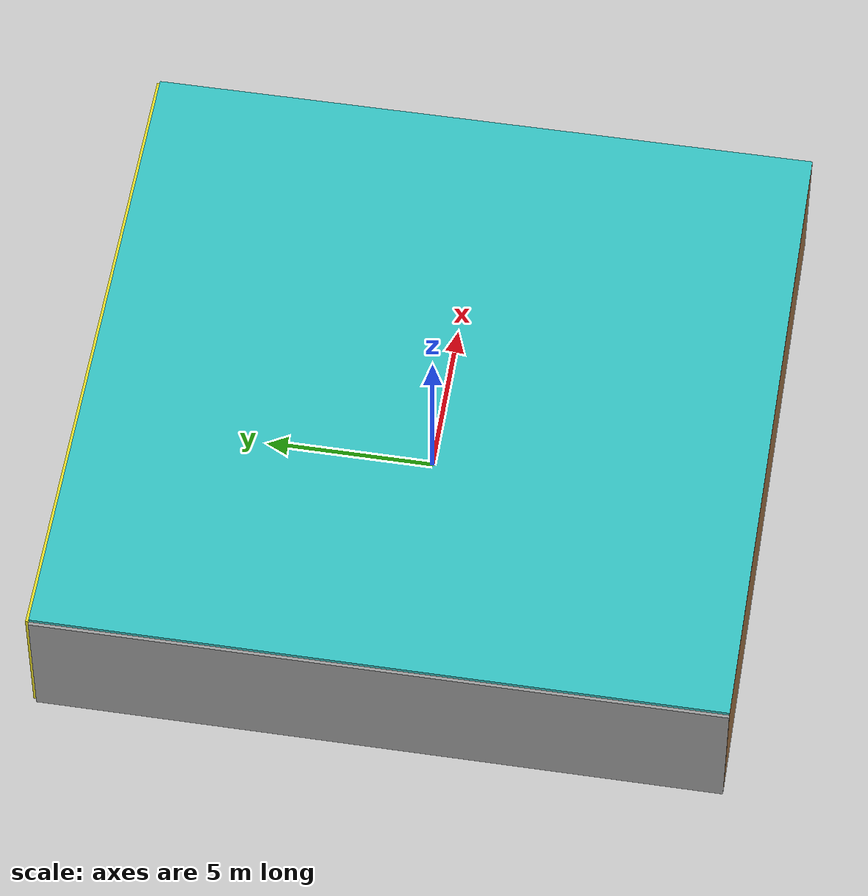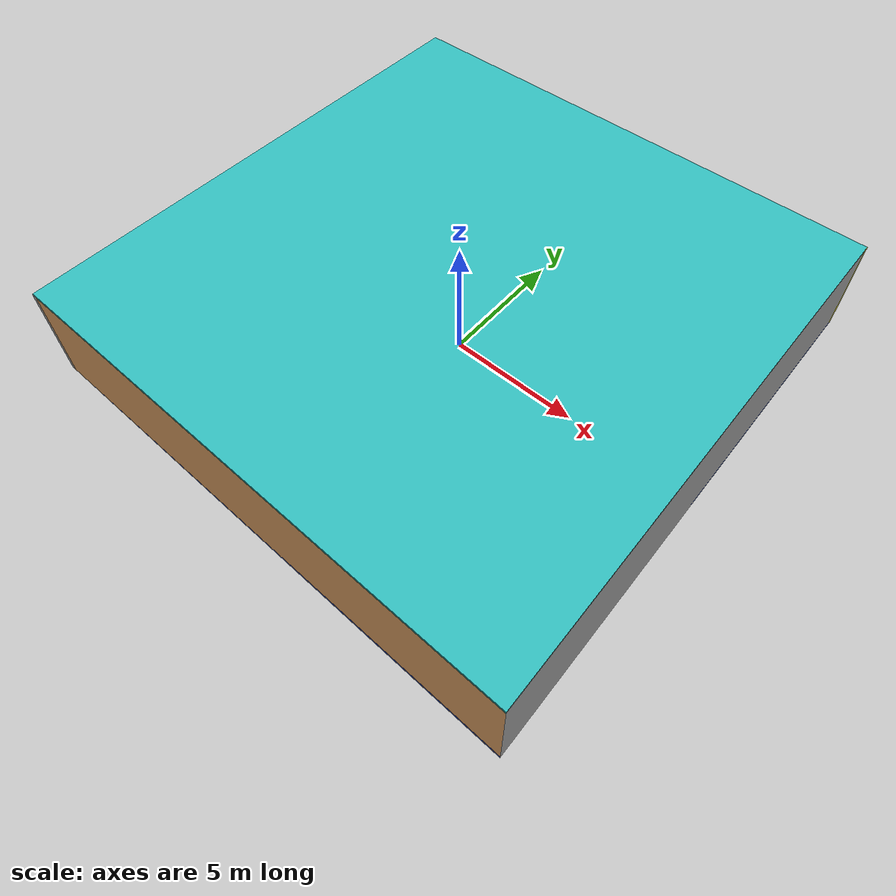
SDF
<sdf version="1.4">
 <world name="default">
  <physics type="ode">
   <max_step_size>0.001</max_step_size>
   <real_time_factor>1</real_time_factor>
   <real_time_update_rate>1000</real_time_update_rate>
   <gravity>0 0 -9.8</gravity>
  </physics>
  <scene><ambient>0.4 0.4 0.4 1</ambient><background>0.7 0.7 0.7 1</background><shadows>1</shadows></scene>
  <model name="Surrounding">
   <static>1</static>
   <link name="Ceiling">
    <collision name="Ceiling_Collision"><geometry><box><size>20 20 0.1</size></box></geometry></collision>
    <visual name="Ceiling_Visual">
     <geometry><box><size>20 20 0.1</size></box></geometry>
     <material>
      <script><uri>file://media/materials/scripts/gazebo.material</uri><name>Gazebo/TurquoiseGlow</name></script>
     </material>
    </visual>
    <pose>0 0 4.05 0 0 0</pose>
   </link>
   <link name="Wall_South">
    <collision name="Wall_South_Collision">
     <geometry><box><size>20 0 4</size></box></geometry>
     <pose>0 0 2 0 -0 0</pose>
    </collision>
    <visual name="Wall_South_Visual">
     <pose>0 0 2 0 -0 0</pose>
     <geometry><box><size>20 0 4</size></box></geometry>
     <material>
      <script><uri>file://media/materials/scripts/gazebo.material</uri><name>Gazebo/WoodPallet</name></script>
     </material>
    </visual>
    <velocity_decay><linear>0</linear><angular>0</angular></velocity_decay>
    <pose>0 -10 0 0 -0 0</pose>
   </link>
   <link name="Wall_East">
    <collision name="Wall_21_Collision">
     <geometry><box><size>20 0 4</size></box></geometry>
     <pose>0 0 2 0 -0 0</pose>
    </collision>
    <visual name="Wall_21_Visual">
     <pose>0 0 2 0 -0 0</pose>
     <geometry><box><size>20 0 4</size></box></geometry>
     <material>
      <script><uri>file://media/materials/scripts/gazebo.material</uri><name>Gazebo/LightOn</name></script>
     </material>
    </visual>
    <velocity_decay><linear>0</linear><angular>0</angular></velocity_decay>
    <pose>10 0 0 0 -0 1.5708</pose>
   </link>
   <link name="Wall_North">
    <collision name="Wall_22_Collision">
     <geometry><box><size>20 0.2 4</size></box></geometry>
     <pose>0 0 2 0 -0 0</pose>
    </collision>
    <visual name="Wall_22_Visual">
     <pose>0 0 2 0 -0 0</pose>
     <geometry><box><size>20 0.2 4</size></box></geometry>
     <material>
      <script><uri>file://media/materials/scripts/gazebo.material</uri><name>Gazebo/Yellow</name></script>
     </material>
    </visual>
    <velocity_decay><linear>0</linear><angular>0</angular></velocity_decay>
    <pose>0 10 0 0 -0 0</pose>
   </link>
   <link name="Wall_West">
    <collision name="Wall_23_Collision">
     <geometry><box><size>20 0.2 4</size></box></geometry>
     <pose>0 0 2 0 -0 0</pose>
    </collision>
    <visual name="Wall_23_Visual">
     <pose>0 0 2 0 -0 0</pose>
     <geometry><box><size>20 0.2 4</size></box></geometry>
     <material>
      <script><uri>file://media/materials/scripts/gazebo.material</uri><name>Gazebo/GreyGradientSky</name></script>
     </material>
    </visual>
    <velocity_decay><linear>0</linear><angular>0</angular></velocity_decay>
    <pose>-10 0 0 0 0 -1.5708</pose>
   </link>
   <link name="Ground_link">
    <collision name="collision">
     <pose>0 0 .05 0 -0 0</pose>
     <geometry><box><size>20 20 0.1</size></box></geometry>
    </collision>
    <visual name="visual">
     <pose>0 0 .05 0 -0 0</pose>
     <geometry><box><size>20 20 0.1</size></box></geometry>
     <material>
      <script><uri>file://media/materials/scripts/gazebo.material</uri><name>Gazebo/BlueGlow</name></script>
     </material>
    </visual>
   </link>
   <static>1</static>
  </model>
  <spherical_coordinates>
   <surface_model>EARTH_WGS84</surface_model>
   <latitude_deg>0</latitude_deg>
   <longitude_deg>0</longitude_deg>
   <elevation>0</elevation>
   <heading_deg>0</heading_deg>
  </spherical_coordinates>
  <light name="lightball_0" type="diffuse">
   <diffuse>0.8 0.8 0.8 1</diffuse>
   <specular>0.2 0.2 0.2 1</specular>
   <attenuation>
    <range>100</range>
    <constant>0.7</constant>
    <linear>0.01</linear>
    <quadratic>0.001</quadratic>
   </attenuation>
   <direction>-0.5 0.1 -0.9</direction>
   <pose>7.36447538172 -6.13295615433 3.41670721606 0 0 0</pose>
  </light>
  <light name="lightball_1" type="diffuse">
   <diffuse>0.8 0.8 0.8 1</diffuse>
   <specular>0.2 0.2 0.2 1</specular>
   <attenuation>
    <range>100</range>
    <constant>0.7</constant>
    <linear>0.01</linear>
    <quadratic>0.001</quadratic>
   </attenuation>
   <direction>-0.5 0.1 -0.9</direction>
   <pose>-3.32501013526 -6.60091826644 1.2163971098 0 0 0</pose>
  </light>
  <light name="lightball_2" type="diffuse">
   <diffuse>0.8 0.8 0.8 1</diffuse>
   <specular>0.2 0.2 0.2 1</specular>
   <attenuation>
    <range>100</range>
    <constant>0.7</constant>
    <linear>0.01</linear>
    <quadratic>0.001</quadratic>
   </attenuation>
   <direction>-0.5 0.1 -0.9</direction>
   <pose>-9.8626068423 -5.37640238513 0.858664393583 0 0 0</pose>
  </light>
  <light name="lightball_3" type="diffuse">
   <diffuse>0.8 0.8 0.8 1</diffuse>
   <specular>0.2 0.2 0.2 1</specular>
   <attenuation>
    <range>100</range>
    <constant>0.7</constant>
    <linear>0.01</linear>
    <quadratic>0.001</quadratic>
   </attenuation>
   <direction>-0.5 0.1 -0.9</direction>
   <pose>-0.417620654437 -5.02742446733 1.89098512484 0 0 0</pose>
  </light>
  <light name="lightball_4" type="diffuse">
   <diffuse>0.8 0.8 0.8 1</diffuse>
   <specular>0.2 0.2 0.2 1</specular>
   <attenuation>
    <range>100</range>
    <constant>0.7</constant>
    <linear>0.01</linear>
    <quadratic>0.001</quadratic>
   </attenuation>
   <direction>-0.5 0.1 -0.9</direction>
   <pose>-2.73028770563 1.24277135595 3.56465364902 0 0 0</pose>
  </light>
  <light name="lightball_5" type="diffuse">
   <diffuse>0.8 0.8 0.8 1</diffuse>
   <specular>0.2 0.2 0.2 1</specular>
   <attenuation>
    <range>100</range>
    <constant>0.7</constant>
    <linear>0.01</linear>
    <quadratic>0.001</quadratic>
   </attenuation>
   <direction>-0.5 0.1 -0.9</direction>
   <pose>-2.89648213105 0.215907668068 1.82002476088 0 0 0</pose>
  </light>
  <light name="lightball_6" type="diffuse">
   <diffuse>0.8 0.8 0.8 1</diffuse>
   <specular>0.2 0.2 0.2 1</specular>
   <attenuation>
    <range>100</range>
    <constant>0.7</constant>
    <linear>0.01</linear>
    <quadratic>0.001</quadratic>
   </attenuation>
   <direction>-0.5 0.1 -0.9</direction>
   <pose>0.261564253845 -6.81223641855 2.65478617668 0 0 0</pose>
  </light>
  <light name="lightball_7" type="diffuse">
   <diffuse>0.8 0.8 0.8 1</diffuse>
   <specular>0.2 0.2 0.2 1</specular>
   <attenuation>
    <range>100</range>
    <constant>0.7</constant>
    <linear>0.01</linear>
    <quadratic>0.001</quadratic>
   </attenuation>
   <direction>-0.5 0.1 -0.9</direction>
   <pose>9.5322047382 2.9936394339 2.92220982478 0 0 0</pose>
  </light>
  <light name="lightball_8" type="diffuse">
   <diffuse>0.8 0.8 0.8 1</diffuse>
   <specular>0.2 0.2 0.2 1</specular>
   <attenuation>
    <range>100</range>
    <constant>0.7</constant>
    <linear>0.01</linear>
    <quadratic>0.001</quadratic>
   </attenuation>
   <direction>-0.5 0.1 -0.9</direction>
   <pose>0.611517161723 6.88787729362 0.894234102954 0 0 0</pose>
  </light>
  <light name="lightball_9" type="diffuse">
   <diffuse>0.8 0.8 0.8 1</diffuse>
   <specular>0.2 0.2 0.2 1</specular>
   <attenuation>
    <range>100</range>
    <constant>0.7</constant>
    <linear>0.01</linear>
    <quadratic>0.001</quadratic>
   </attenuation>
   <direction>-0.5 0.1 -0.9</direction>
   <pose>-7.53154186017 -3.43640375055 1.2680047332 0 0 0</pose>
  </light>
  <light name="lightball_10" type="diffuse">
   <diffuse>0.8 0.8 0.8 1</diffuse>
   <specular>0.2 0.2 0.2 1</specular>
   <attenuation>
    <range>100</range>
    <constant>0.7</constant>
    <linear>0.01</linear>
    <quadratic>0.001</quadratic>
   </attenuation>
   <direction>-0.5 0.1 -0.9</direction>
   <pose>7.94540149891 -1.16833852484 3.35376757952 0 0 0</pose>
  </light>
  <include><uri>model://table</uri><pose>-6.84094569359 -1.60786981993 0 0 0 2.42748479621</pose></include>
  <include><uri>model://cabinet</uri><pose>-8.04744047855 7.98682827459 0 0 0 0.853005403345</pose></include>
  <include>
   <uri>model://textured_shapes</uri>
   <pose>-3.80939709464 -1.45021188702 0 0 0 1.51630005819</pose>
  </include>
  <include>
   <uri>model://robocup_3Dsim_goal</uri>
   <pose>4.5681307993 4.52888245258 0 0 0 1.04155013848</pose>
  </include>
  <include><uri>model://table</uri><pose>8.18966529215 1.71394837943 0 0 0 1.52892850236</pose></include>
 </world>
</sdf>

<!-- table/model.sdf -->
<sdf version="1.5">
  <model name="table">
    <static>true</static>
    <link name="link">
      <collision name="surface">
        <pose>0 0 1.0 0 0 0</pose>
        <geometry>
          <box>
            <size>1.5 0.8 0.03</size>
          </box>
        </geometry>
        <surface>
          <friction>
            <ode>
              <mu>0.6</mu>
              <mu2>0.6</mu2>
            </ode>
          </friction>
        </surface>
      </collision>
      <visual name="visual1">
        <pose>0 0 1.0 0 0 0</pose>
        <geometry>
          <box>
            <size>1.5 0.8 0.03</size>
          </box>
        </geometry>
        <material>
          <script>
            <uri>model://media/materials/scripts/gazebo.material</uri>
            <name>Gazebo/Wood</name>
          </script>
        </material>
      </visual>
      <collision name="front_left_leg">
        <pose>0.68 0.38 0.5 0 0 0</pose>
        <geometry>
          <cylinder>
            <radius>0.02</radius>
            <length>1.0</length>
          </cylinder>
        </geometry>
      </collision>
      <visual name="front_left_leg">
        <pose>0.68 0.38 0.5 0 0 0</pose>
        <geometry>
          <cylinder>
            <radius>0.02</radius>
            <length>1.0</length>
          </cylinder>
        </geometry>
        <material>
          <script>
            <uri>model://media/materials/scripts/gazebo.material</uri>
            <name>Gazebo/Grey</name>
          </script>
        </material>
      </visual>
      <collision name="front_right_leg">
        <pose>0.68 -0.38 0.5 0 0 0</pose>
        <geometry>
          <cylinder>
            <radius>0.02</radius>
            <length>1.0</length>
          </cylinder>
        </geometry>
      </collision>
      <visual name="front_right_leg">
        <pose>0.68 -0.38 0.5 0 0 0</pose>
        <geometry>
          <cylinder>
            <radius>0.02</radius>
            <length>1.0</length>
          </cylinder>
        </geometry>
        <material>
          <script>
            <uri>model://media/materials/scripts/gazebo.material</uri>
            <name>Gazebo/Grey</name>
          </script>
        </material>
      </visual>
      <collision name="back_right_leg">
        <pose>-0.68 -0.38 0.5 0 0 0</pose>
        <geometry>
          <cylinder>
            <radius>0.02</radius>
            <length>1.0</length>
          </cylinder>
        </geometry>
      </collision>
      <visual name="back_right_leg">
        <pose>-0.68 -0.38 0.5 0 0 0</pose>
        <geometry>
          <cylinder>
            <radius>0.02</radius>
            <length>1.0</length>
          </cylinder>
        </geometry>
        <material>
          <script>
            <uri>model://media/materials/scripts/gazebo.material</uri>
            <name>Gazebo/Grey</name>
          </script>
        </material>
      </visual>
      <collision name="back_left_leg">
        <pose>-0.68 0.38 0.5 0 0 0</pose>
        <geometry>
          <cylinder>
            <radius>0.02</radius>
            <length>1.0</length>
          </cylinder>
        </geometry>
      </collision>
      <visual name="back_left_leg">
        <pose>-0.68 0.38 0.5 0 0 0</pose>
        <geometry>
          <cylinder>
            <radius>0.02</radius>
            <length>1.0</length>
          </cylinder>
        </geometry>
        <material>
          <script>
            <uri>model://media/materials/scripts/gazebo.material</uri>
            <name>Gazebo/Grey</name>
          </script>
        </material>
      </visual>
    </link>
  </model>
</sdf>

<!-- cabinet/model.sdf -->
<sdf version="1.5">
  <model name="cabinet">
    <static>true</static>
    <link name="cabinet_bottom_plate">
      <inertial>
        <pose>0 0 -1 0 0 0</pose>
        <inertia>
          <ixx>2.050000</ixx>
          <ixy>0</ixy>
          <ixz>0</ixz>
          <iyy>2.050000</iyy>
          <iyz>0</iyz>
          <izz>2.050000</izz>
        </inertia>
        <mass>25.000000</mass>
      </inertial>
      <collision name="cabinet_bottom_plate_geom">
        <pose>0 0 0.010000 0 0 0</pose>
        <geometry>
          <box>
            <size>0.450000 0.450000 0.020000</size>
          </box>
        </geometry>
      </collision>
      <visual name="cabinet_bottom_plate_geom_visual">
        <pose>0 0 0.010000 0 0 0</pose>
        <geometry>
          <box>
            <size>0.450000 0.450000 0.020000</size>
          </box>
        </geometry>
        <material>
          <script>
            <uri>model://media/materials/scripts/gazebo.material</uri>
            <name>Gazebo/Wood</name>
          </script>
        </material>
      </visual>
      <collision name="cabinet_bottom_plate_geom_cabinet_back_plate">
        <pose>0.235000 0 0.510000 0 0 0</pose>
        <geometry>
          <box>
            <size>0.020000 0.450000 1.020000</size>
          </box>
        </geometry>
      </collision>
      <visual name="cabinet_bottom_plate_geom_cabinet_back_plate_visual">
        <pose>0.235000 0 0.510000 0 0 0</pose>
        <geometry>
          <box>
            <size>0.020000 0.450000 1.020000</size>
          </box>
        </geometry>
        <material>
          <script>
            <uri>model://media/materials/scripts/gazebo.material</uri>
            <name>Gazebo/Wood</name>
          </script>
        </material>
      </visual>
      <collision name="cabinet_bottom_plate_geom_cabinet_left_plate">
        <pose>0 0.235000 0.510000 0 0 0</pose>
        <geometry>
          <box>
            <size>0.450000 0.020000 1.020000</size>
          </box>
        </geometry>
      </collision>
      <visual name="cabinet_bottom_plate_geom_cabinet_left_plate_visual">
        <pose>0 0.235000 0.510000 0 0 0</pose>
        <geometry>
          <box>
            <size>0.450000 0.020000 1.020000</size>
          </box>
        </geometry>
        <material>
          <script>
            <uri>model://media/materials/scripts/gazebo.material</uri>
            <name>Gazebo/Wood</name>
          </script>
        </material>
      </visual>
      <collision name="cabinet_bottom_plate_geom_cabinet_middle_plate">
        <pose>0 0 0.510000 0 0 0</pose>
        <geometry>
          <box>
            <size>0.450000 0.450000 0.020000</size>
          </box>
        </geometry>
      </collision>
      <visual name="cabinet_bottom_plate_geom_cabinet_middle_plate_visual">
        <pose>0 0 0.510000 0 0 0</pose>
        <geometry>
          <box>
            <size>0.450000 0.450000 0.020000</size>
          </box>
        </geometry>
        <material>
          <script>
            <uri>model://media/materials/scripts/gazebo.material</uri>
            <name>Gazebo/Wood</name>
          </script>
        </material>
      </visual>
      <collision name="cabinet_bottom_plate_geom_cabinet_right_plate">
        <pose>0 -0.235000 0.510000 0 0 0</pose>
        <geometry>
          <box>
            <size>0.450000 0.020000 1.020000</size>
          </box>
        </geometry>
      </collision>
      <visual name="cabinet_bottom_plate_geom_cabinet_right_plate_visual">
        <pose>0 -0.235000 0.510000 0 0 0</pose>
        <geometry>
          <box>
            <size>0.450000 0.020000 1.020000</size>
          </box>
        </geometry>
        <material>
          <script>
            <uri>model://media/materials/scripts/gazebo.material</uri>
            <name>Gazebo/Wood</name>
          </script>
        </material>
      </visual>
      <collision name="cabinet_bottom_plate_geom_cabinet_top_plate">
        <pose>0 0 1.010000 0 0 0</pose>
        <geometry>
          <box>
            <size>0.450000 0.450000 0.020000</size>
          </box>
        </geometry>
      </collision>
      <visual name="cabinet_bottom_plate_geom_cabinet_top_plate_visual">
        <pose>0 0 1.010000 0 0 0</pose>
        <geometry>
          <box>
            <size>0.450000 0.450000 0.020000</size>
          </box>
        </geometry>
        <material>
          <script>
            <uri>model://media/materials/scripts/gazebo.material</uri>
            <name>Gazebo/Wood</name>
          </script>
        </material>
      </visual>
    </link>
  </model>
</sdf>

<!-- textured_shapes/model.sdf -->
<sdf version="1.6">
  <model name="textured_shapes">
    <pose>0 0 0.5 0 0 0</pose>
    <link name="box">
      <pose>0 -1.5 0 0 0 0</pose>
      <collision name="collision">
        <geometry>
          <box>
            <size>1 1 1</size>
          </box>
        </geometry>
      </collision>
      <visual name="visual">
        <geometry>
          <box>
            <size>1 1 1</size>
          </box>
        </geometry>
        <material>
          <script>
            <uri>model://../model_source/models/textured_shapes/materials/scripts</uri>
            <uri>model://../model_source/models/textured_shapes/materials/textures</uri>
            <name>TexturedShape/Squares</name>
          </script>
        </material>
      </visual>
    </link>
    <link name="sphere">
      <collision name="collision">
        <geometry>
          <sphere>
            <radius>0.5</radius>
          </sphere>
        </geometry>
      </collision>
      <visual name="visual">
        <geometry>
          <sphere>
            <radius>0.5</radius>
          </sphere>
        </geometry>
        <material>
          <script>
            <uri>model://../model_source/models/textured_shapes/materials/scripts</uri>
            <uri>model://../model_source/models/textured_shapes/materials/textures</uri>
            <name>TexturedShape/Squares</name>
          </script>
        </material>
      </visual>
    </link>
    <link name="cylinder">
      <pose>0 1.5 0 0 0 0</pose>
      <collision name="collision">
        <geometry>
          <cylinder>
            <radius>0.5</radius>
            <length>1</length>
          </cylinder>
        </geometry>
      </collision>
      <visual name="visual">
        <geometry>
          <cylinder>
            <radius>0.5</radius>
            <length>1</length>
          </cylinder>
        </geometry>
        <material>
          <script>
            <uri>model://../model_source/models/textured_shapes/materials/scripts</uri>
            <uri>model://../model_source/models/textured_shapes/materials/textures</uri>
            <name>TexturedShape/Squares</name>
          </script>
        </material>
      </visual>
    </link>
  </model>
</sdf>

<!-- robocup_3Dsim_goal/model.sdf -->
<sdf version="1.5">
  <model name="robocup_3d_goal">
    <static>true</static>
    <link name="left_post">
      <pose>0 1.05 0.45 0 0 0</pose>
      <collision name="collision">
        <geometry>
          <cylinder>
            <radius>0.05</radius>
            <length>0.9</length>
          </cylinder>
        </geometry>
      </collision>
      <visual name="visual">
        <geometry>
          <cylinder>
            <radius>0.05</radius>
            <length>0.9</length>
          </cylinder>
        </geometry>
        <material>
          <script>
            <uri>file://media/materials/scripts/gazebo.material</uri>
            <name>Gazebo/ZincYellow</name>
          </script>
        </material>
      </visual>
    </link>
    <link name="left_support_horiz_lower">
      <pose>0.30 1.05 0.01 0 0 0</pose>
      <collision name="collision">
        <geometry>
          <box>
            <size>0.50 0.02 0.02</size>
          </box>
        </geometry>
      </collision>
      <visual name="visual">
        <geometry>
          <box>
            <size>0.50 0.02 0.02</size>
          </box>
        </geometry>
        <material>
          <script>
            <uri>file://media/materials/scripts/gazebo.material</uri>
            <name>Gazebo/White</name>
          </script>
        </material>
      </visual>
    </link>
    <link name="left_support_horiz_upper">
      <pose>0.30 1.05 0.79 0 0 0</pose>
      <collision name="collision">
        <geometry>
          <box>
            <size>0.50 0.02 0.02</size>
          </box>
        </geometry>
      </collision>
      <visual name="visual">
        <geometry>
          <box>
            <size>0.50 0.02 0.02</size>
          </box>
        </geometry>
        <material>
          <script>
            <uri>file://media/materials/scripts/gazebo.material</uri>
            <name>Gazebo/White</name>
          </script>
        </material>
      </visual>
    </link>
    <link name="left_support_vertical">
      <pose>0.56 1.05 0.4 0 1.5708 0</pose>
      <collision name="collision">
        <geometry>
          <box>
            <size>0.80 0.02 0.02</size>
          </box>
        </geometry>
      </collision>
      <visual name="visual">
        <geometry>
          <box>
            <size>0.80 0.02 0.02</size>
          </box>
        </geometry>
        <material>
          <script>
            <uri>file://media/materials/scripts/gazebo.material</uri>
            <name>Gazebo/White</name>
          </script>
        </material>
      </visual>
    </link>
    <link name="right_support_horiz_lower">
      <pose>0.30 -1.05 0.01 0 0 0</pose>
      <collision name="collision">
        <geometry>
          <box>
            <size>0.50 0.02 0.02</size>
          </box>
        </geometry>
      </collision>
      <visual name="visual">
        <geometry>
          <box>
            <size>0.50 0.02 0.02</size>
          </box>
        </geometry>
        <material>
          <script>
            <uri>file://media/materials/scripts/gazebo.material</uri>
            <name>Gazebo/White</name>
          </script>
        </material>
      </visual>
    </link>
    <link name="right_support_horiz_upper">
      <pose>0.30 -1.05 0.79 0 0 0</pose>
      <collision name="collision">
        <geometry>
          <box>
            <size>0.50 0.02 0.02</size>
          </box>
        </geometry>
      </collision>
      <visual name="visual">
        <geometry>
          <box>
            <size>0.50 0.02 0.02</size>
          </box>
        </geometry>
        <material>
          <script>
            <uri>file://media/materials/scripts/gazebo.material</uri>
            <name>Gazebo/White</name>
          </script>
        </material>
      </visual>
    </link>
    <link name="right_support_vertical">
      <pose>0.56 -1.05 0.4 0 1.5708 0</pose>
      <collision name="collision">
        <geometry>
          <box>
            <size>0.80 0.02 0.02</size>
          </box>
        </geometry>
      </collision>
      <visual name="visual">
        <geometry>
          <box>
            <size>0.80 0.02 0.02</size>
          </box>
        </geometry>
        <material>
          <script>
            <uri>file://media/materials/scripts/gazebo.material</uri>
            <name>Gazebo/White</name>
          </script>
        </material>
      </visual>
    </link>
    <link name="center_support_horiz_lower">
      <pose>0.56 0 0.01 0 1.5708 0</pose>
      <collision name="collision">
        <geometry>
          <box>
            <size>0.02 2.08 0.02</size>
          </box>
        </geometry>
      </collision>
      <visual name="visual">
        <geometry>
          <box>
            <size>0.02 2.08 0.02</size>
          </box>
        </geometry>
        <material>
          <script>
            <uri>file://media/materials/scripts/gazebo.material</uri>
            <name>Gazebo/White</name>
          </script>
        </material>
      </visual>
    </link>
    <link name="center_support_horiz_upper">
      <pose>0.56 0 0.79 0 1.5708 0</pose>
      <collision name="collision">
        <geometry>
          <box>
            <size>0.02 2.08 0.02</size>
          </box>
        </geometry>
      </collision>
      <visual name="visual">
        <geometry>
          <box>
            <size>0.02 2.08 0.02</size>
          </box>
        </geometry>
        <material>
          <script>
            <uri>file://media/materials/scripts/gazebo.material</uri>
            <name>Gazebo/White</name>
          </script>
        </material>
      </visual>
    </link>
    <link name="right_post">
      <pose>0 -1.05 0.45 0 0 0</pose>
      <collision name="collision">
        <geometry>
          <cylinder>
            <radius>0.05</radius>
            <length>0.9</length>
          </cylinder>
        </geometry>
      </collision>
      <visual name="visual">
        <geometry>
          <cylinder>
            <radius>0.05</radius>
            <length>0.9</length>
          </cylinder>
        </geometry>
        <material>
          <script>
            <uri>file://media/materials/scripts/gazebo.material</uri>
            <name>Gazebo/ZincYellow</name>
          </script>
        </material>
      </visual>
    </link>
    <link name="crossbar">
      <pose>0 0 0.85 1.57 1.57 0</pose>
      <collision name="collision">
        <geometry>
          <cylinder>
            <radius>0.05</radius>
            <length>2.0</length>
          </cylinder>
        </geometry>
      </collision>
      <visual name="visual">
        <geometry>
          <cylinder>
            <radius>0.05</radius>
            <length>2.0</length>
          </cylinder>
        </geometry>
        <material>
          <script>
            <uri>file://media/materials/scripts/gazebo.material</uri>
            <name>Gazebo/ZincYellow</name>
          </script>
        </material>
      </visual>
    </link>
    <link name="center_net">
      <pose>0.56 0 0.40 0 0 0</pose>
      <collision name="collision">
        <geometry>
          <box>
            <size>0.01 2.1 0.80</size>
          </box>
        </geometry>
      </collision>
      <visual name="visual">
        <geometry>
          <box>
            <size>0.01 2.1 0.80</size>
          </box>
        </geometry>
        <material>
          <script>
            <uri>model://../model_source/models/robocup09_spl_field/materials/scripts/</uri>
            <uri>model://../model_source/models/robocup09_spl_field/materials/textures/</uri>
            <name>RoboCup/Net</name>
          </script>
        </material>
      </visual>
    </link>
    <link name="left_net">
      <pose>0.30 1.05 0.40 0 0 0</pose>
      <collision name="collision">
        <geometry>
          <box>
            <size>0.50 0.01 0.76</size>
          </box>
        </geometry>
      </collision>
      <visual name="visual">
        <geometry>
          <box>
            <size>0.50 0.01 0.76</size>
          </box>
        </geometry>
        <material>
          <script>
            <uri>model://../model_source/models/robocup09_spl_field/materials/scripts/</uri>
            <uri>model://../model_source/models/robocup09_spl_field/materials/textures/</uri>
            <name>RoboCup/Net</name>
          </script>
        </material>
      </visual>
    </link>
    <link name="right_net">
      <pose>0.30 -1.05 0.40 0 0 0</pose>
      <collision name="collision">
        <geometry>
          <box>
            <size>0.50 0.01 0.76</size>
          </box>
        </geometry>
      </collision>
      <visual name="visual">
        <geometry>
          <box>
            <size>0.50 0.01 0.76</size>
          </box>
        </geometry>
        <material>
          <script>
            <uri>model://../model_source/models/robocup09_spl_field/materials/scripts/</uri>
            <uri>model://../model_source/models/robocup09_spl_field/materials/textures/</uri>
            <name>RoboCup/Net</name>
          </script>
        </material>
      </visual>
    </link>
  </model>
</sdf>
